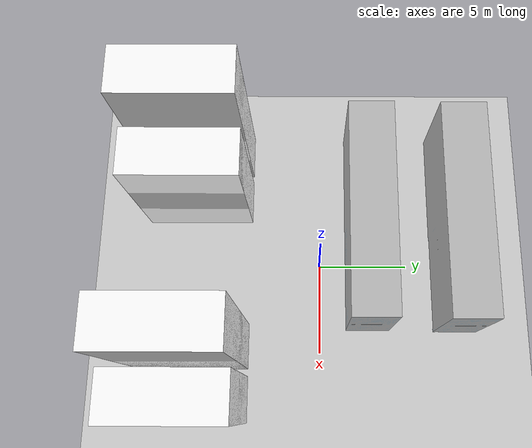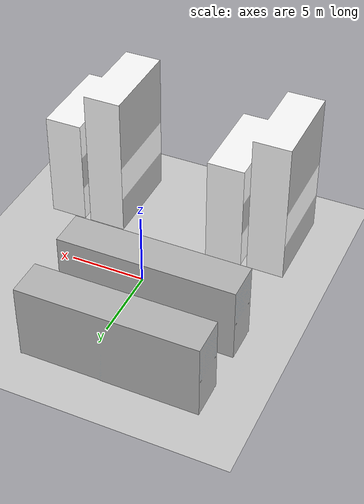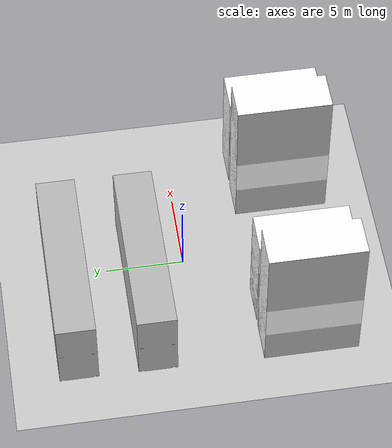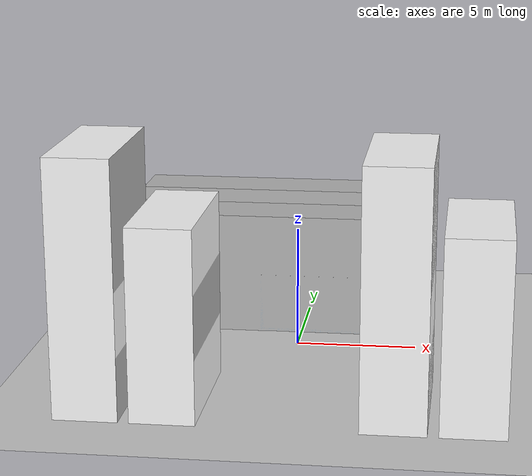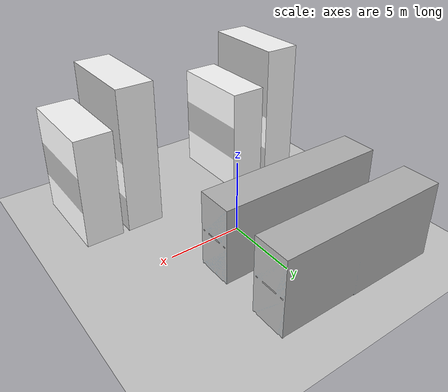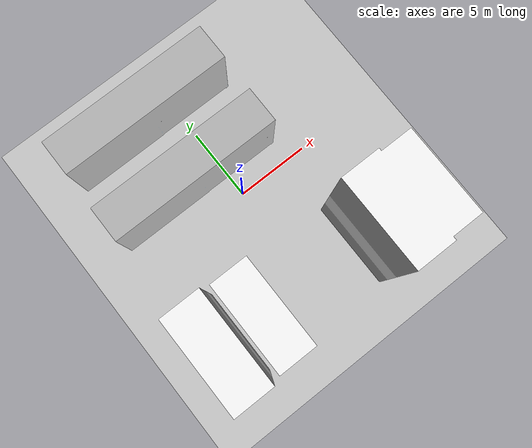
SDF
<sdf version="1.6">
 <world name="default">
  <light name="sun" type="directional">
   <pose>0 0 10 0 -0 0</pose>
   <diffuse>0.8 0.8 0.8 1</diffuse>
   <specular>0.2 0.2 0.2 1</specular>
   <attenuation>
    <range>1000</range>
    <constant>0.9</constant>
    <linear>0.01</linear>
    <quadratic>0.001</quadratic>
   </attenuation>
   <direction>-0.5 0.1 -0.9</direction>
  </light>
  <model name="ground_plane">
   <static>1</static>
   <link name="link">
    <collision name="collision">
     <geometry><plane><normal>0 0 1</normal><size>100 100</size></plane></geometry>
     <surface><friction><ode><mu>100</mu><mu2>50</mu2></ode></friction></surface>
    </collision>
    <visual name="visual">
     <cast_shadows>0</cast_shadows>
     <geometry><plane><normal>0 0 1</normal><size>100 100</size></plane></geometry>
     <material>
      <script><uri>file://media/materials/scripts/gazebo.material</uri><name>Gazebo/Grey</name></script>
     </material>
    </visual>
   </link>
  </model>
  <plugin name="ros_interface_plugin" filename="librotors_gazebo_ros_interface_plugin.so"/>
  <gravity>0 0 -9.8</gravity>
  <magnetic_field>6e-06 2.3e-05 -4.2e-05</magnetic_field>
  <atmosphere type="adiabatic"/>
  <physics type="ode">
   <ode>
    <solver><type>quick</type><iters>1000</iters><sor>1.3</sor></solver>
    <constraints>
     <cfm>0</cfm>
     <erp>0.2</erp>
     <contact_max_correcting_vel>100</contact_max_correcting_vel>
     <contact_surface_layer>0.001</contact_surface_layer>
    </constraints>
   </ode>
   <max_step_size>0.01</max_step_size>
   <real_time_factor>1</real_time_factor>
   <real_time_update_rate>100</real_time_update_rate>
   <gravity>0 0 -9.8</gravity>
  </physics>
  <scene><ambient>0.4 0.4 0.4 1</ambient><background>0.7 0.7 0.7 1</background><shadows>1</shadows></scene>
  <audio><device>default</device></audio>
  <spherical_coordinates>
   <surface_model>EARTH_WGS84</surface_model>
   <latitude_deg>0</latitude_deg>
   <longitude_deg>0</longitude_deg>
   <elevation>0</elevation>
   <heading_deg>0</heading_deg>
  </spherical_coordinates>
  <model name="container-triple-stack">
   <static>1</static>
   <link name="chassis">
    <collision name="collision">
     <geometry><mesh><uri>model://container-triple-stack/model.dae</uri></mesh></geometry>
    </collision>
    <visual name="visual">
     <geometry><mesh><uri>model://container-triple-stack/model.dae</uri></mesh></geometry>
    </visual>
   </link>
   <pose>58.1822 6.31387 0 0 -0 0</pose>
  </model>
  <model name="container-multi-stack">
   <static>1</static>
   <link name="chassis">
    <collision name="collision">
     <geometry><mesh><uri>model://container-multi-stack/container-multi-stack.dae</uri></mesh></geometry>
    </collision>
    <visual name="visual">
     <geometry><mesh><uri>model://container-multi-stack/container-multi-stack.dae</uri></mesh></geometry>
    </visual>
   </link>
   <pose>-8.10771 -11.0651 0 0 -0 0</pose>
  </model>
  <model name="container-triple-stack_0">
   <static>1</static>
   <link name="chassis">
    <collision name="collision">
     <geometry><mesh><uri>model://container-triple-stack/model.dae</uri></mesh></geometry>
    </collision>
    <visual name="visual">
     <geometry><mesh><uri>model://container-triple-stack/model.dae</uri></mesh></geometry>
    </visual>
   </link>
   <pose>58.126 1.37227 0 0 -0 0</pose>
  </model>
  <model name="container-multi-stack_0">
   <static>1</static>
   <link name="chassis">
    <collision name="collision">
     <geometry><mesh><uri>model://container-multi-stack/container-multi-stack.dae</uri></mesh></geometry>
    </collision>
    <visual name="visual">
     <geometry><mesh><uri>model://container-multi-stack/container-multi-stack.dae</uri></mesh></geometry>
    </visual>
   </link>
   <pose>3.37791 -11.1112 0 0 -0 0</pose>
  </model>
 </world>
</sdf>
